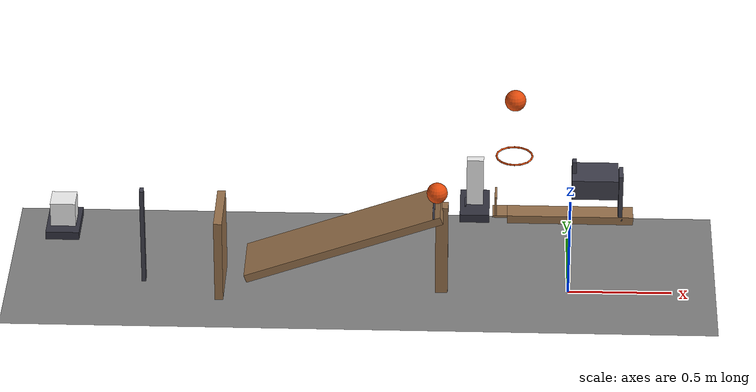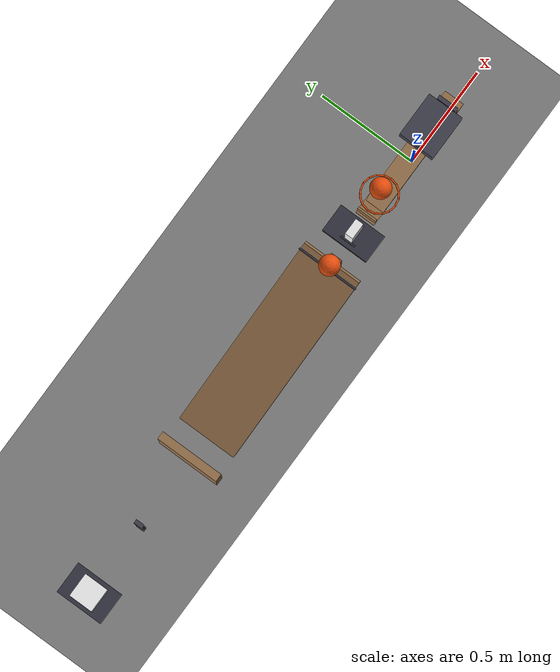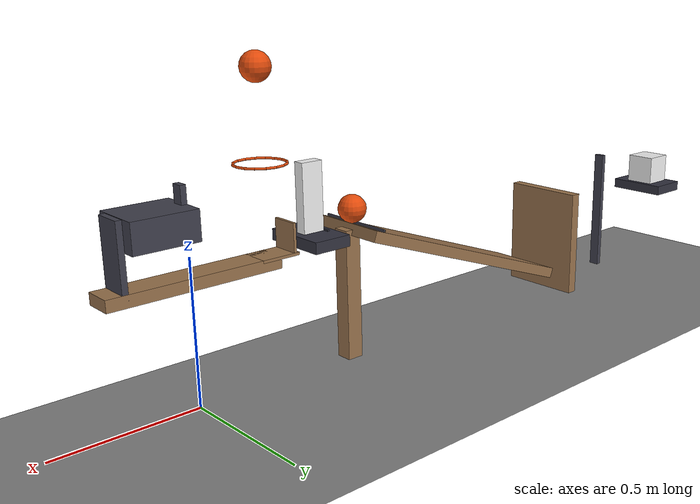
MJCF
<mujoco model="gravity_driven_chain_with_domino_heel_stop">
  <compiler angle="radian"/>
  <option timestep="0.002"/>
  <worldbody>
    <geom name="floor" type="plane" size="6 6 0.1" friction="0.72 0 0"/>
    <body name="lever1" pos="0 0 0.43">
      <joint name="lever1_hinge" type="hinge" pos="0 0 0" axis="0 1 0" limited="true" range="-0.785398 0" damping="0.04"/>
      <geom name="lever1" type="box" pos="0 0 0" size="0.3 0.05 0.02" mass="0.466" friction="0.72 0 0" solref="0.01 0.715646" rgba="0.6 0.45 0.3 1"/>
      <geom name="lever balance weight" type="box" pos="-0.25 0 0" size="0.01 0.01 0.01" mass="0.03" contype="0" conaffinity="0" rgba="0.2 0.2 0.25 1"/>
      <geom name="lever scoop base" type="box" pos="-0.3 0 0.015" size="0.07 0.05 0.005" mass="0.001" friction="0.72 0 0" solref="0.01 0.715646" rgba="0.6 0.45 0.3 1"/>
      <geom name="lever scoop back" type="box" pos="-0.355 0 0.07" size="0.005 0.05 0.05" mass="0.002" friction="0.72 0 0" solref="0.01 0.715646" rgba="0.6 0.45 0.3 1"/>
      <geom name="lever striker" type="box" pos="0.238 0 0.12" size="0.01 0.05 0.12" mass="0.001" friction="0.72 0 0" solref="0.01 0.715646" rgba="0.25 0.25 0.3 1"/>
    </body>
    <body name="ring1">
      <geom name="ring1_rim00" type="capsule" size="0.004" fromto="-0.184354 0 0.75 -0.190874 0.0327752 0.75" friction="0.72 0 0" solref="0.01 0.715646" rgba="0.9 0.3 0.05 1"/>
      <geom name="ring1_rim01" type="capsule" size="0.004" fromto="-0.190874 0.0327752 0.75 -0.209439 0.0605606 0.75" friction="0.72 0 0" solref="0.01 0.715646" rgba="0.9 0.3 0.05 1"/>
      <geom name="ring1_rim02" type="capsule" size="0.004" fromto="-0.209439 0.0605606 0.75 -0.237225 0.0791263 0.75" friction="0.72 0 0" solref="0.01 0.715646" rgba="0.9 0.3 0.05 1"/>
      <geom name="ring1_rim03" type="capsule" size="0.004" fromto="-0.237225 0.0791263 0.75 -0.27 0.0856457 0.75" friction="0.72 0 0" solref="0.01 0.715646" rgba="0.9 0.3 0.05 1"/>
      <geom name="ring1_rim04" type="capsule" size="0.004" fromto="-0.27 0.0856457 0.75 -0.302775 0.0791263 0.75" friction="0.72 0 0" solref="0.01 0.715646" rgba="0.9 0.3 0.05 1"/>
      <geom name="ring1_rim05" type="capsule" size="0.004" fromto="-0.302775 0.0791263 0.75 -0.330561 0.0605606 0.75" friction="0.72 0 0" solref="0.01 0.715646" rgba="0.9 0.3 0.05 1"/>
      <geom name="ring1_rim06" type="capsule" size="0.004" fromto="-0.330561 0.0605606 0.75 -0.349126 0.0327752 0.75" friction="0.72 0 0" solref="0.01 0.715646" rgba="0.9 0.3 0.05 1"/>
      <geom name="ring1_rim07" type="capsule" size="0.004" fromto="-0.349126 0.0327752 0.75 -0.355646 0 0.75" friction="0.72 0 0" solref="0.01 0.715646" rgba="0.9 0.3 0.05 1"/>
      <geom name="ring1_rim08" type="capsule" size="0.004" fromto="-0.355646 0 0.75 -0.349126 -0.0327752 0.75" friction="0.72 0 0" solref="0.01 0.715646" rgba="0.9 0.3 0.05 1"/>
      <geom name="ring1_rim09" type="capsule" size="0.004" fromto="-0.349126 -0.0327752 0.75 -0.330561 -0.0605606 0.75" friction="0.72 0 0" solref="0.01 0.715646" rgba="0.9 0.3 0.05 1"/>
      <geom name="ring1_rim10" type="capsule" size="0.004" fromto="-0.330561 -0.0605606 0.75 -0.302775 -0.0791263 0.75" friction="0.72 0 0" solref="0.01 0.715646" rgba="0.9 0.3 0.05 1"/>
      <geom name="ring1_rim11" type="capsule" size="0.004" fromto="-0.302775 -0.0791263 0.75 -0.27 -0.0856457 0.75" friction="0.72 0 0" solref="0.01 0.715646" rgba="0.9 0.3 0.05 1"/>
      <geom name="ring1_rim12" type="capsule" size="0.004" fromto="-0.27 -0.0856457 0.75 -0.237225 -0.0791263 0.75" friction="0.72 0 0" solref="0.01 0.715646" rgba="0.9 0.3 0.05 1"/>
      <geom name="ring1_rim13" type="capsule" size="0.004" fromto="-0.237225 -0.0791263 0.75 -0.209439 -0.0605606 0.75" friction="0.72 0 0" solref="0.01 0.715646" rgba="0.9 0.3 0.05 1"/>
      <geom name="ring1_rim14" type="capsule" size="0.004" fromto="-0.209439 -0.0605606 0.75 -0.190874 -0.0327752 0.75" friction="0.72 0 0" solref="0.01 0.715646" rgba="0.9 0.3 0.05 1"/>
      <geom name="ring1_rim15" type="capsule" size="0.004" fromto="-0.190874 -0.0327752 0.75 -0.184354 0 0.75" friction="0.72 0 0" solref="0.01 0.715646" rgba="0.9 0.3 0.05 1"/>
    </body>
    <body name="ball1" pos="-0.27 0 1.05">
      <freejoint/>
      <geom name="ball1" type="sphere" pos="0 0 0" size="0.05" mass="0.2" condim="6" friction="0.72 0 0" solref="0.01 0.715646" rgba="0.9 0.3 0.05 1"/>
    </body>
    <body name="cart1" pos="0.115 0 0.62">
      <joint name="cart1_slide" type="slide" pos="0 0 0" axis="1 0 0" limited="true" range="-0.55 0" damping="0.2"/>
      <geom name="cart1" type="box" pos="0 0 0" size="0.11 0.09 0.05" mass="0.499" friction="0.72 0 0" solref="0.01 0.715646" rgba="0.25 0.25 0.3 1"/>
      <geom name="cart high striker" type="box" pos="-0.1 0 0.07" size="0.01 0.02 0.04" mass="0.001" friction="0.72 0 0" solref="0.01 0.715646" rgba="0.25 0.25 0.3 1"/>
    </body>
    <body name="ramp1">
      <geom name="ramp1_deck" type="box" pos="-1.08091 0 0.302216" size="0.5 0.15 0.02" euler="0 2.79253 0" friction="0.72 0 0" solref="0.01 0.715646" rgba="0.6 0.45 0.3 1"/>
      <geom name="ramp1_leg" type="box" pos="-0.611059 0 0.236613" size="0.03 0.03 0.236613" friction="0.72 0 0" solref="0.01 0.715646" rgba="0.6 0.45 0.3 1"/>
    </body>
    <body name="domino support">
      <geom name="domino support" type="box" pos="-0.455 0 0.47202" size="0.07 0.12 0.02" friction="0.72 0 0" solref="0.01 0.715646" rgba="0.2 0.2 0.25 1"/>
    </body>
    <body name="domino heel stop">
      <geom name="domino heel stop" type="box" pos="-0.499 0 0.49452" size="0.004 0.04 0.0025" friction="0.72 0 0" solref="0.01 0.715646" rgba="0.2 0.2 0.25 1"/>
    </body>
    <body name="ramp retaining lip">
      <geom name="ramp retaining lip" type="capsule" size="0.005" fromto="-0.649326 0.15 0.485903 -0.649326 -0.15 0.485903" friction="0.72 0 0" solref="0.01 0.715646" rgba="0.2 0.2 0.25 1"/>
    </body>
    <body name="ball2" pos="-0.635 0 0.539004">
      <freejoint/>
      <geom name="ball2" type="sphere" pos="0 0 0" size="0.05" mass="0.2" condim="6" friction="0.72 0 0" solref="0.01 0.715646" rgba="0.9 0.3 0.05 1"/>
    </body>
    <body name="domino1" pos="-0.455 0 0.61202">
      <freejoint/>
      <geom name="domino1" type="box" pos="0 0 0" size="0.04 0.02 0.12" mass="0.25" friction="0.72 0 0" solref="0.01 0.715646" rgba="0.95 0.95 0.95 1"/>
    </body>
    <body name="door1" pos="-1.67759 0 0.02">
      <joint name="door1_hinge" type="hinge" pos="0 0 0" axis="0 1 0" limited="true" range="-1.22173 0" damping="0.04"/>
      <geom name="door1" type="box" pos="0 0 0.21" size="0.02 0.16 0.21" mass="0.45" friction="0.72 0 0" solref="0.01 0.715646" rgba="0.6 0.45 0.3 1"/>
    </body>
    <body name="pendulum1" pos="-2.05 0 0.03">
      <joint name="pendulum1_hinge" type="hinge" pos="0 0 0" axis="0 1 0" limited="true" range="-0.663225 0" damping="0.04"/>
      <geom name="pendulum1" type="box" pos="0 0 0.25" size="0.01 0.02 0.25" mass="0.35" friction="0.72 0 0" solref="0.01 0.715646" rgba="0.25 0.25 0.3 1"/>
    </body>
    <body name="block support">
      <geom name="block support" type="box" pos="-2.4248 0 0.33784" size="0.08 0.12 0.02" friction="0.72 0 0" solref="0.01 0.715646" rgba="0.2 0.2 0.25 1"/>
    </body>
    <body name="block1" pos="-2.4248 0 0.41784">
      <freejoint/>
      <geom name="block1" type="box" pos="0 0 0" size="0.06 0.06 0.06" mass="0.35" friction="0.72 0 0" solref="0.01 0.715646" rgba="0.95 0.95 0.95 1"/>
    </body>
  </worldbody>
  <keyframe>
    <key name="start" qpos="0 -0.27 0 1.05 1 0 0 0 0 -0.635 0 0.539004 1 0 0 0 -0.455 0 0.61202 1 0 0 0 0 0 -2.4248 0 0.41784 1 0 0 0" qvel="0 0 0 0 0 0 0 0 0 0 0 0 0 0 0 0 0 0 0 0 0 0 0 0 0 0 0 0"/>
  </keyframe>
</mujoco>
